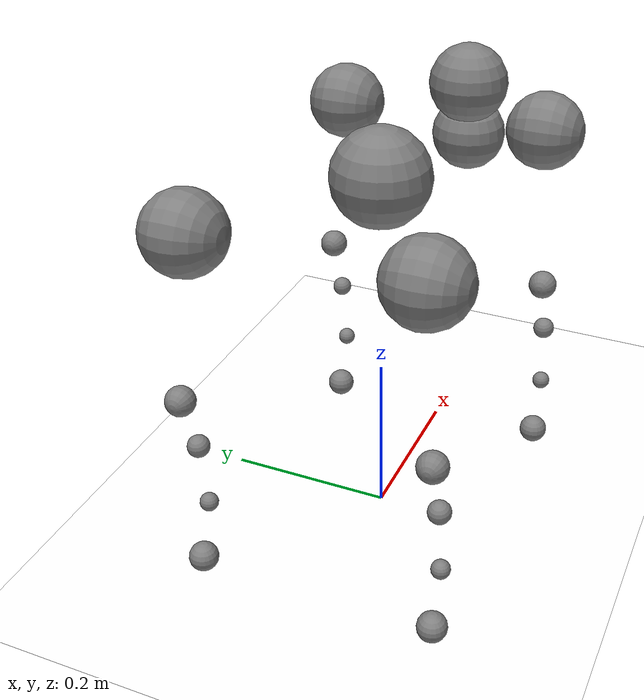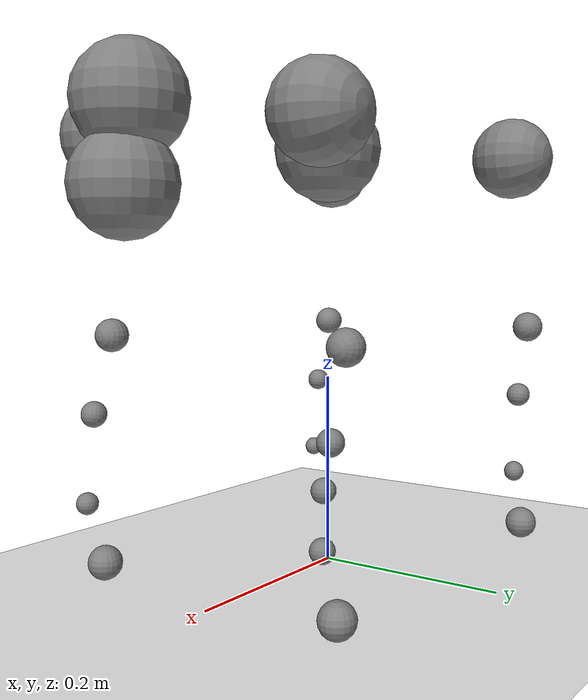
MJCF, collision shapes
<mujoco model="go2 scene">
    <include file="go2_mjx_fullcollisions.xml"/>
    <statistic center="0 0 0.1" extent="0.8" meansize="0.04"/>
    <visual>
        <headlight diffuse=".8 .8 .8" ambient=".2 .2 .2" specular="1 1 1"/>
        <rgba force="1 0 0 1"/>
        <global azimuth="120" elevation="-20"/>
        <map force="0.01"/>
        <scale forcewidth="0.3" contactwidth="0.5" contactheight="0.2"/>
        <quality shadowsize="8192"/>
    </visual>
    <asset>
        <texture type="skybox" builtin="gradient" rgb1="1 1 1" rgb2="1 1 1" width="800" height="800"/>
        <texture type="2d" name="groundplane" builtin="checker" mark="edge" rgb1="1 1 1" rgb2="1 1 1" markrgb="0 0 0"
      width="300" height="300"/>
        <material name="groundplane" texture="groundplane" texuniform="true" texrepeat="5 5" reflectance="0"/>
    </asset>
    <worldbody>
        <geom name="floor" size="0 0 0.01" type="plane" material="groundplane" priority="1" friction="0.6" condim="3" contype="1" conaffinity="0"/>
    </worldbody>
    <keyframe>
        <key name="home" qpos="
    0 0 0.278
    1 0 0 0
    0.1 0.9 -1.8
    -0.1 0.9 -1.8
    0.1 0.9 -1.8
    -0.1 0.9 -1.8"
      ctrl="0.1 0.9 -1.8 -0.1 0.9 -1.8 0.1 0.9 -1.8 -0.1 0.9 -1.8"/>
        <key name="home_higher" qpos="0 0 0.31 1 0 0 0 0 0.82 -1.63 0 0.82 -1.63 0 0.82 -1.63 0 0.82 -1.63"
      ctrl="0 0.82 -1.63 0 0.82 -1.63 0 0.82 -1.63 0 0.82 -1.63"/>
        <key name="pre_recovery"
      qpos="-0.0318481 -0.000215369 0.0579031 1 -2.70738e-05 6.06169e-05 0.000231261 -0.352275 1.18554 -2.80738 0.360892 1.1806 -2.80281 -0.381197 1.16812 -2.79123 0.391054 1.1622 -2.78576"
      ctrl="-0.352275 1.18554 -2.80738 0.360892 1.1806 -2.80281 -0.381197 1.16812 -2.79123 0.391054 1.1622 -2.78576"/>
        <key name="footstand"
      qpos="0 0 0.54 0.8 0 -0.8 0 0 0.82 -1.6 0 0.82 -1.68 0 1.82 -1.16 0.0 1.82 -1.16"
      ctrl="0 0.82 -1.6 0 0.82 -1.68 0 1.82 -1.16 0.0 1.82 -1.16"/>
        <key name="handstand"
      qpos="0 0 0.54 0.8 0 0.8 0 0 -0.686 -1.16 0 -0.686 -1.16 0 1.7 -1.853 0 1.7 -1.853"
      ctrl="0 -0.686 -1.16 0 -0.686 -1.16 0 1.7 -1.853 0 1.7 -1.853"/>
    </keyframe>
</mujoco>

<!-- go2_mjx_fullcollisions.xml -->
<mujoco model="go2">
    <compiler angle="radian" meshdir="../../../../../mujoco_menagerie/unitree_go2/assets" autolimits="true"/>
    <option iterations="1" ls_iterations="5" timestep="0.004" integrator="Euler">
        <flag eulerdamp="disable"/>
    </option>
    <custom>
        <numeric data="30" name="max_contact_points"/>
        <numeric data="12" name="max_geom_pairs"/>
    </custom>
    <default>
        <default class="go2">
            <geom condim="1"/>
            <joint axis="0 1 0" damping="2" armature="0.01"/>
            <general forcerange="-24 24" biastype="affine" gainprm="50 0 0" biasprm="0 -50 -0.5"/>
            <default class="abduction">
                <joint axis="1 0 0" range="-1.0472 1.0472"/>
                <general ctrlrange="-0.9472 0.9472"/>
            </default>
            <default class="hip">
                <joint range="-1.5708 3.4907"/>
                <general ctrlrange="-1.4 2.5"/>
            </default>
            <default class="knee">
                <joint range="-2.7227 -0.83776"/>
                <general ctrlrange="-2.6227 -0.84776"/>
            </default>
            <default class="visual">
                <geom type="mesh" contype="0" conaffinity="0" group="2"/>
            </default>
            <default class="go2foot">
                <site pos="0 0 -0.213" type="sphere" size="0.023" group="5"/>
                <geom rgba="0.231373 0.380392 0.705882 1"/>
            </default>
            <default class="collision">
                <geom group="3"/>
                <default class="foot">
                    <geom type="sphere" size="0.0175" pos="-0.002 0 -0.213" solimp="0.9 .95 0.023" condim="3"/>
                </default>
            </default>
        </default>
    </default>
    <asset>
        <material name="metal" rgba=".9 .95 .95 1"/>
        <material name="black" rgba="0 0 0 1"/>
        <material name="white" rgba="1 1 1 1"/>
        <material name="gray" rgba="0.671705 0.692426 0.774270 1"/>
        <mesh file="base_0.obj"/>
        <mesh file="base_1.obj"/>
        <mesh file="base_2.obj"/>
        <mesh file="base_3.obj"/>
        <mesh file="base_4.obj"/>
        <mesh file="hip_0.obj"/>
        <mesh file="hip_1.obj"/>
        <mesh file="thigh_0.obj"/>
        <mesh file="thigh_1.obj"/>
        <mesh file="thigh_mirror_0.obj"/>
        <mesh file="thigh_mirror_1.obj"/>
        <mesh file="calf_0.obj"/>
        <mesh file="calf_1.obj"/>
        <mesh file="calf_mirror_0.obj"/>
        <mesh file="calf_mirror_1.obj"/>
        <mesh file="foot.obj"/>
    </asset>
    <worldbody>
        <body name="base" pos="0 0 0.445" childclass="go2">
            <camera name="track" pos="0.846 -1.465 0.916" xyaxes="0.866 0.500 0.000 -0.171 0.296 0.940" mode="trackcom"/>
            <inertial pos="0.021112 0 -0.005366" quat="-0.000543471 0.713435 -0.00173769 0.700719" mass="6.921"
        diaginertia="0.107027 0.0980771 0.0244531"/>
            <freejoint/>
            <geom mesh="base_0" material="black" class="visual"/>
            <geom mesh="base_1" material="black" class="visual"/>
            <geom mesh="base_2" material="black" class="visual"/>
            <geom mesh="base_3" material="white" class="visual"/>
            <geom mesh="base_4" material="gray" class="visual"/>
            <geom size="0.057 0.04675 0.057" class="collision"/>
            <geom size="0.05 0.045" pos="0.285 0 0.01" class="collision"/>
            <geom size="0.047" pos="0.293 0 -0.06" class="collision"/>
            <site name="imu" pos="-0.02557 0 0.04232"/>
            <body name="FR_hip" pos="0.1934 -0.0465 0">
                <inertial pos="-0.0054 -0.00194 -0.000105" quat="0.498237 0.505462 0.499245 0.497014" mass="0.678"
          diaginertia="0.00088403 0.000596003 0.000479967"/>
                <joint name="FR_hip_joint" class="abduction"/>
                <geom mesh="hip_0" material="metal" class="visual" quat="4.63268e-05 1 0 0"/>
                <geom mesh="hip_1" material="gray" class="visual" quat="4.63268e-05 1 0 0"/>
                <geom name="fr_hip_0" size="0.046 0.02" pos="0 -0.08 0" quat="0.707107 0.707107 0 0" class="collision"/>
                <body name="FR_thigh" pos="0 -0.0955 0">
                    <inertial pos="-0.00374 0.0223 -0.0327" quat="0.551623 -0.0200632 0.0847635 0.829533" mass="1.152"
            diaginertia="0.00594973 0.00584149 0.000878787"/>
                    <joint name="FR_thigh_joint" class="hip"/>
                    <geom mesh="thigh_mirror_0" material="metal" class="visual"/>
                    <geom mesh="thigh_mirror_1" material="gray" class="visual"/>
                    <geom name="fr_thigh_0" size="0.017 0.01225 0.017" pos="-0.015 0 -0.1955" quat="0.707107 0 0.707107 0" class="collision"/>
                    <body name="FR_calf" pos="0 0 -0.213">
                        <inertial pos="0.00629595 0.000622121 -0.141417" quat="0.703508 -0.00450087 0.00154099 0.710672"
              mass="0.241352" diaginertia="0.0014901 0.00146356 5.31397e-05"/>
                        <joint name="FR_calf_joint" class="knee"/>
                        <geom mesh="calf_mirror_0" material="gray" class="visual"/>
                        <geom mesh="calf_mirror_1" material="black" class="visual"/>
                        <geom name="fr_calf_0" size="0.013 0.06" pos="0.01 0 -0.06" quat="0.995004 0 -0.0998334 0" class="collision"/>
                        <geom name="fr_calf_1" size="0.011 0.0325" pos="0.02 0 -0.148" quat="0.999688 0 0.0249974 0" class="collision"/>
                        <geom pos="0 0 -0.213" mesh="foot" class="visual" material="black"/>
                        <geom name="FR" class="foot"/>
                        <site name="FR" class="go2foot"/>
                    </body>
                </body>
            </body>
            <body name="FL_hip" pos="0.1934 0.0465 0">
                <inertial pos="-0.0054 0.00194 -0.000105" quat="0.497014 0.499245 0.505462 0.498237" mass="0.678"
          diaginertia="0.00088403 0.000596003 0.000479967"/>
                <joint name="FL_hip_joint" class="abduction"/>
                <geom mesh="hip_0" material="metal" class="visual"/>
                <geom mesh="hip_1" material="gray" class="visual"/>
                <geom name="fl_hip_0" size="0.046 0.02" pos="0 0.08 0" quat="1 1 0 0" class="collision"/>
                <body name="FL_thigh" pos="0 0.0955 0">
                    <inertial pos="-0.00374 -0.0223 -0.0327" quat="0.829533 0.0847635 -0.0200632 0.551623" mass="1.152"
            diaginertia="0.00594973 0.00584149 0.000878787"/>
                    <joint name="FL_thigh_joint" class="hip"/>
                    <geom mesh="thigh_0" material="metal" class="visual"/>
                    <geom mesh="thigh_1" material="gray" class="visual"/>
                    <geom name="fl_thigh_0" size="0.017 0.01225 0.017" pos="-0.015 0 -0.1955" quat="0.707107 0 0.707107 0" class="collision"/>
                    <body name="FL_calf" pos="0 0 -0.213">
                        <inertial pos="0.00629595 -0.000622121 -0.141417" quat="0.710672 0.00154099 -0.00450087 0.703508"
              mass="0.241352" diaginertia="0.0014901 0.00146356 5.31397e-05"/>
                        <joint name="FL_calf_joint" class="knee"/>
                        <geom mesh="calf_0" material="gray" class="visual"/>
                        <geom mesh="calf_1" material="black" class="visual"/>
                        <geom name="fl_calf_0" size="0.012 0.06" pos="0.008 0 -0.06" quat="0.994493 0 -0.104807 0" class="collision"/>
                        <geom name="fl_calf_1" size="0.011 0.0325" pos="0.02 0 -0.148" quat="0.999688 0 0.0249974 0" class="collision"/>
                        <geom pos="0 0 -0.213" mesh="foot" class="visual" material="black"/>
                        <geom name="FL" class="foot"/>
                        <site name="FL" class="go2foot"/>
                    </body>
                </body>
            </body>
            <body name="RR_hip" pos="-0.1934 -0.0465 0">
                <inertial pos="0.0054 -0.00194 -0.000105" quat="0.499245 0.497014 0.498237 0.505462" mass="0.678"
          diaginertia="0.00088403 0.000596003 0.000479967"/>
                <joint name="RR_hip_joint" class="abduction"/>
                <geom mesh="hip_0" material="metal" class="visual" quat="2.14617e-09 4.63268e-05 4.63268e-05 -1"/>
                <geom mesh="hip_1" material="gray" class="visual" quat="2.14617e-09 4.63268e-05 4.63268e-05 -1"/>
                <geom name="rr_hip_0" size="0.046 0.02" pos="0 -0.08 0" quat="0.707107 0.707107 0 0" class="collision"/>
                <body name="RR_thigh" pos="0 -0.0955 0">
                    <inertial pos="-0.00374 0.0223 -0.0327" quat="0.551623 -0.0200632 0.0847635 0.829533" mass="1.152"
            diaginertia="0.00594973 0.00584149 0.000878787"/>
                    <joint name="RR_thigh_joint" class="hip"/>
                    <geom mesh="thigh_mirror_0" material="metal" class="visual"/>
                    <geom mesh="thigh_mirror_1" material="gray" class="visual"/>
                    <geom name="rr_thigh_0" size="0.017 0.01225 0.017" pos="-0.015 0 -0.1955" quat="0.707107 0 0.707107 0" class="collision"/>
                    <body name="RR_calf" pos="0 0 -0.213">
                        <inertial pos="0.00629595 0.000622121 -0.141417" quat="0.703508 -0.00450087 0.00154099 0.710672"
              mass="0.241352" diaginertia="0.0014901 0.00146356 5.31397e-05"/>
                        <joint name="RR_calf_joint" class="knee"/>
                        <geom mesh="calf_mirror_0" material="gray" class="visual"/>
                        <geom mesh="calf_mirror_1" material="black" class="visual"/>
                        <geom name="rr_calf_0" size="0.013 0.06" pos="0.01 0 -0.06" quat="0.995004 0 -0.0998334 0" class="collision"/>
                        <geom name="rr_calf_1" size="0.011 0.0325" pos="0.02 0 -0.148" quat="0.999688 0 0.0249974 0" class="collision"/>
                        <geom pos="0 0 -0.213" mesh="foot" class="visual" material="black"/>
                        <geom name="RR" class="foot"/>
                        <site name="RR" class="go2foot"/>
                    </body>
                </body>
            </body>
            <body name="RL_hip" pos="-0.1934 0.0465 0">
                <inertial pos="0.0054 0.00194 -0.000105" quat="0.505462 0.498237 0.497014 0.499245" mass="0.678"
          diaginertia="0.00088403 0.000596003 0.000479967"/>
                <joint name="RL_hip_joint" class="abduction"/>
                <geom mesh="hip_0" material="metal" class="visual" quat="4.63268e-05 0 1 0"/>
                <geom mesh="hip_1" material="gray" class="visual" quat="4.63268e-05 0 1 0"/>
                <geom name="rl_hip_0" size="0.046 0.02" pos="0 0.08 0" quat="0.707107 0.707107 0 0" class="collision"/>
                <body name="RL_thigh" pos="0 0.0955 0">
                    <inertial pos="-0.00374 -0.0223 -0.0327" quat="0.829533 0.0847635 -0.0200632 0.551623" mass="1.152"
            diaginertia="0.00594973 0.00584149 0.000878787"/>
                    <joint name="RL_thigh_joint" class="hip"/>
                    <geom mesh="thigh_0" material="metal" class="visual"/>
                    <geom mesh="thigh_1" material="gray" class="visual"/>
                    <geom name="rl_thigh_0" size="0.017 0.01225 0.017" pos="-0.015 0 -0.1955" quat="0.707107 0 0.707107 0" class="collision"/>
                    <body name="RL_calf" pos="0 0 -0.213">
                        <inertial pos="0.00629595 -0.000622121 -0.141417" quat="0.710672 0.00154099 -0.00450087 0.703508"
              mass="0.241352" diaginertia="0.0014901 0.00146356 5.31397e-05"/>
                        <joint name="RL_calf_joint" class="knee"/>
                        <geom mesh="calf_0" material="gray" class="visual"/>
                        <geom mesh="calf_1" material="black" class="visual"/>
                        <geom name="rl_calf_0" size="0.013 0.06" pos="0.01 0 -0.06" quat="0.995004 0 -0.0998334 0" class="collision"/>
                        <geom name="rl_calf_1" size="0.011 0.0325" pos="0.02 0 -0.148" quat="0.999688 0 0.0249974 0" class="collision"/>
                        <geom pos="0 0 -0.213" mesh="foot" class="visual" material="black"/>
                        <geom name="RL" class="foot"/>
                        <site name="RL" class="go2foot"/>
                    </body>
                </body>
            </body>
        </body>
    </worldbody>
    <actuator>
        <general class="abduction" name="FR_hip" joint="FR_hip_joint"/>
        <general class="hip" name="FR_thigh" joint="FR_thigh_joint"/>
        <general class="knee" name="FR_calf" joint="FR_calf_joint"/>
        <general class="abduction" name="FL_hip" joint="FL_hip_joint"/>
        <general class="hip" name="FL_thigh" joint="FL_thigh_joint"/>
        <general class="knee" name="FL_calf" joint="FL_calf_joint"/>
        <general class="abduction" name="RR_hip" joint="RR_hip_joint"/>
        <general class="hip" name="RR_thigh" joint="RR_thigh_joint"/>
        <general class="knee" name="RR_calf" joint="RR_calf_joint"/>
        <general class="abduction" name="RL_hip" joint="RL_hip_joint"/>
        <general class="hip" name="RL_thigh" joint="RL_thigh_joint"/>
        <general class="knee" name="RL_calf" joint="RL_calf_joint"/>
    </actuator>
    <sensor>
        <jointpos joint="FL_hip_joint" name="abduction_front_left_pos"/>
        <jointpos joint="FL_thigh_joint" name="hip_front_left_pos"/>
        <jointpos joint="FL_calf_joint" name="knee_front_left_pos"/>
        <jointpos joint="RL_hip_joint" name="abduction_hind_left_pos"/>
        <jointpos joint="RL_thigh_joint" name="hip_hind_left_pos"/>
        <jointpos joint="RL_calf_joint" name="knee_hind_left_pos"/>
        <jointpos joint="FR_hip_joint" name="abduction_front_right_pos"/>
        <jointpos joint="FR_thigh_joint" name="hip_front_right_pos"/>
        <jointpos joint="FR_calf_joint" name="knee_front_right_pos"/>
        <jointpos joint="RR_hip_joint" name="abduction_hind_right_pos"/>
        <jointpos joint="RR_thigh_joint" name="hip_hind_right_pos"/>
        <jointpos joint="RR_calf_joint" name="knee_hind_right_pos"/>
        <jointvel joint="FL_hip_joint" name="abduction_front_left_vel"/>
        <jointvel joint="FL_thigh_joint" name="hip_front_left_vel"/>
        <jointvel joint="FL_calf_joint" name="knee_front_left_vel"/>
        <jointvel joint="RL_hip_joint" name="abduction_hind_left_vel"/>
        <jointvel joint="RL_thigh_joint" name="hip_hind_left_vel"/>
        <jointvel joint="RL_calf_joint" name="knee_hind_left_vel"/>
        <jointvel joint="FR_hip_joint" name="abduction_front_right_vel"/>
        <jointvel joint="FR_thigh_joint" name="hip_front_right_vel"/>
        <jointvel joint="FR_calf_joint" name="knee_front_right_vel"/>
        <jointvel joint="RR_hip_joint" name="abduction_hind_right_vel"/>
        <jointvel joint="RR_thigh_joint" name="hip_hind_right_vel"/>
        <jointvel joint="RR_calf_joint" name="knee_hind_right_vel"/>
        <gyro site="imu" name="gyro"/>
        <accelerometer site="imu" name="accelerometer"/>
        <velocimeter site="imu" name="local_linvel"/>
        <framezaxis objtype="site" objname="imu" name="upvector"/>
        <framequat objtype="site" objname="imu" name="orientation"/>
        <framepos objtype="site" objname="imu" name="global_position"/>
        <framelinvel objtype="site" objname="imu" name="global_linvel"/>
        <frameangvel objtype="site" objname="imu" name="global_angvel"/>
        <framelinvel objtype="site" objname="FR" name="FR_global_linvel"/>
        <framelinvel objtype="site" objname="FL" name="FL_global_linvel"/>
        <framelinvel objtype="site" objname="RR" name="RR_global_linvel"/>
        <framelinvel objtype="site" objname="RL" name="RL_global_linvel"/>
        <framepos objtype="site" objname="FR" name="FR_pos" reftype="site" refname="imu"/>
        <framepos objtype="site" objname="FL" name="FL_pos" reftype="site" refname="imu"/>
        <framepos objtype="site" objname="RR" name="RR_pos" reftype="site" refname="imu"/>
        <framepos objtype="site" objname="RL" name="RL_pos" reftype="site" refname="imu"/>
    </sensor>
</mujoco>
